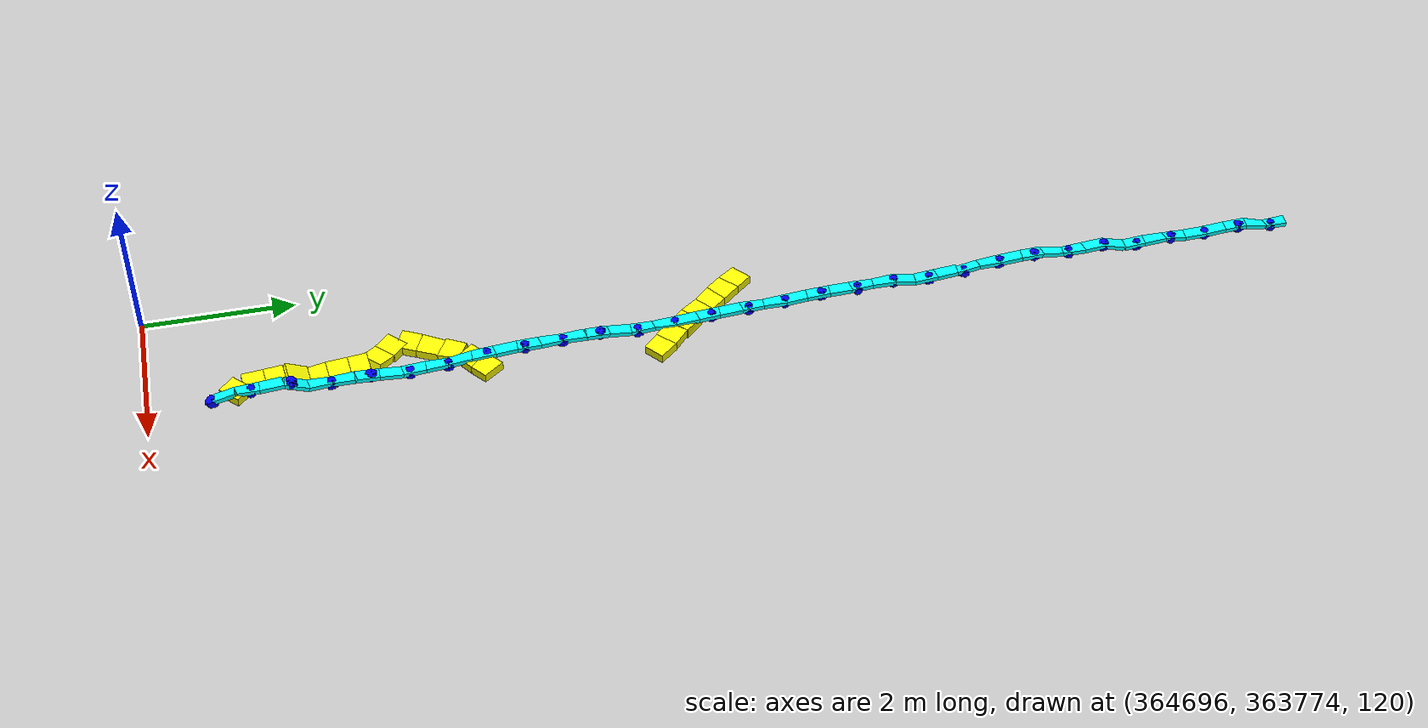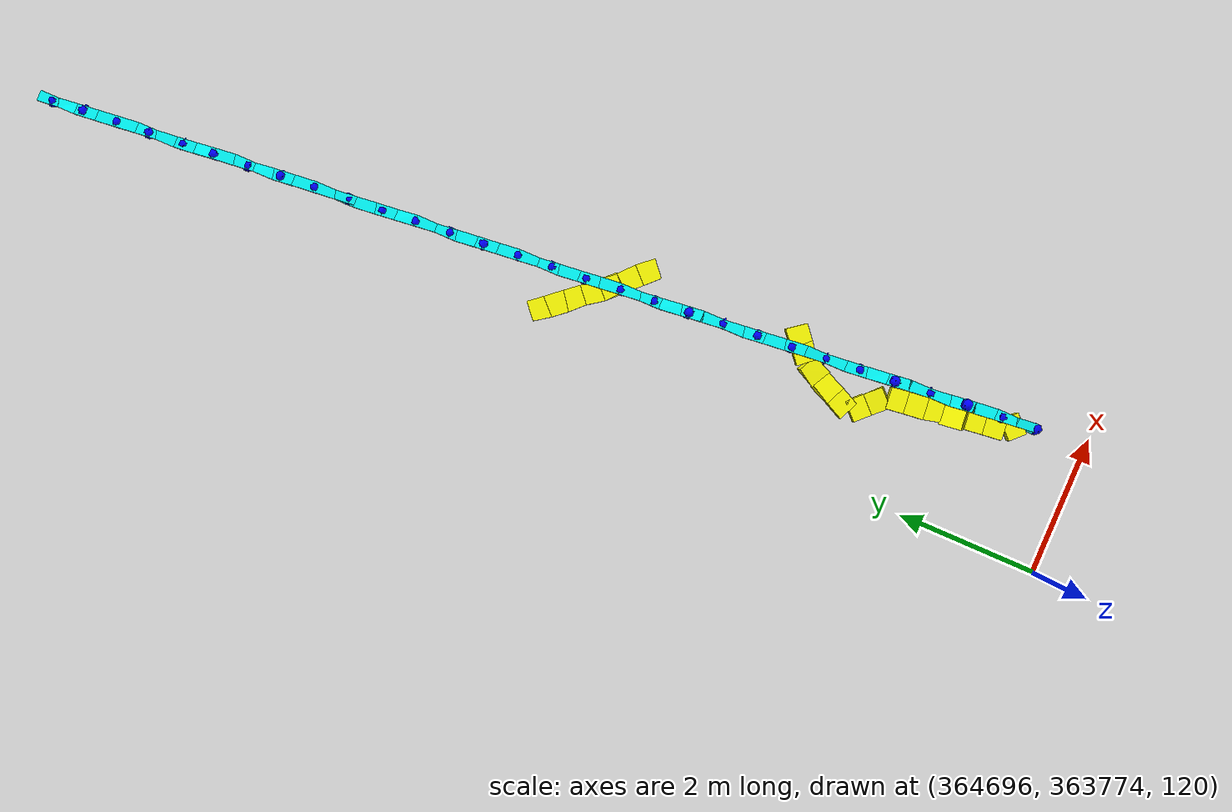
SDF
<sdf version="1.5">
 <world name="default">
  <include><uri>model://sun</uri></include>
  <model name="road_segment_1">
   <static>true</static>
   <pose>364697.74 363775.14 120.30999999991997 0 -5.659366866794168e-10 2.356194490192345</pose>
   <link name="link">
    <collision name="collision">
     <geometry><box><size>0.2828427124087646 0.3 0.12</size></box></geometry>
     <surface><friction><ode><mu>0.1</mu><mu2>0.1</mu2></ode></friction></surface>
    </collision>
    <visual name="visual">
     <geometry><box><size>0.2828427124087646 0.3 0.12</size></box></geometry>
     <material><ambient>1 1 0 1</ambient><diffuse>1 1 0 1</diffuse><emissive>1 1 0 1</emissive></material>
    </visual>
   </link>
  </model>
  <model name="road_segment_2">
   <static>true</static>
   <pose>364697.62333333335 363775.3733333333 120.30999999999999 0 5.2879187787523526e-14 1.695151321314793</pose>
   <link name="link">
    <collision name="collision">
     <geometry><box><size>0.2687419249384718 0.3 0.12</size></box></geometry>
     <surface><friction><ode><mu>0.02</mu><mu2>0.02</mu2></ode></friction></surface>
    </collision>
    <visual name="visual">
     <geometry><box><size>0.2687419249384718 0.3 0.12</size></box></geometry>
     <material><ambient>1 1 0 1</ambient><diffuse>1 1 0 1</diffuse><emissive>1 1 0 1</emissive></material>
    </visual>
   </link>
  </model>
  <model name="road_segment_3">
   <static>true</static>
   <pose>364697.59 363775.64 120.30999999999999 0 -5.2879187787523526e-14 1.695151321314793</pose>
   <link name="link">
    <collision name="collision">
     <geometry><box><size>0.2687419249384718 0.3 0.12</size></box></geometry>
     <surface><friction><ode><mu>0.02</mu><mu2>0.02</mu2></ode></friction></surface>
    </collision>
    <visual name="visual">
     <geometry><box><size>0.2687419249384718 0.3 0.12</size></box></geometry>
     <material><ambient>1 1 0 1</ambient><diffuse>1 1 0 1</diffuse><emissive>1 1 0 1</emissive></material>
    </visual>
   </link>
  </model>
  <model name="road_segment_4">
   <static>true</static>
   <pose>364697.5566666667 363775.9066666667 120.23500000026193 0 0.5090836740391417 1.695151321287928</pose>
   <link name="link">
    <collision name="collision">
     <geometry><box><size>0.3077697550012352 0.3 0.12</size></box></geometry>
     <surface><friction><ode><mu>0.02</mu><mu2>0.02</mu2></ode></friction></surface>
    </collision>
    <visual name="visual">
     <geometry><box><size>0.3077697550012352 0.3 0.12</size></box></geometry>
     <material><ambient>1 1 0 1</ambient><diffuse>1 1 0 1</diffuse><emissive>1 1 0 1</emissive></material>
    </visual>
   </link>
  </model>
  <model name="road_segment_5">
   <static>true</static>
   <pose>364697.5233333333 363776.17333333334 120.16000000026192 0 1.9493912577346843e-09 1.6951513215297136</pose>
   <link name="link">
    <collision name="collision">
     <geometry><box><size>0.2687419249456916 0.3 0.12</size></box></geometry>
     <surface><friction><ode><mu>0.02</mu><mu2>0.02</mu2></ode></friction></surface>
    </collision>
    <visual name="visual">
     <geometry><box><size>0.2687419249456916 0.3 0.12</size></box></geometry>
     <material><ambient>1 1 0 1</ambient><diffuse>1 1 0 1</diffuse><emissive>1 1 0 1</emissive></material>
    </visual>
   </link>
  </model>
  <model name="road_segment_6">
   <static>true</static>
   <pose>364697.49 363776.44000000006 120.15999999999998 0 -0.0 1.695151321314793</pose>
   <link name="link">
    <collision name="collision">
     <geometry><box><size>0.2687419249384718 0.3 0.12</size></box></geometry>
     <surface><friction><ode><mu>0.02</mu><mu2>0.02</mu2></ode></friction></surface>
    </collision>
    <visual name="visual">
     <geometry><box><size>0.2687419249384718 0.3 0.12</size></box></geometry>
     <material><ambient>1 1 0 1</ambient><diffuse>1 1 0 1</diffuse><emissive>1 1 0 1</emissive></material>
    </visual>
   </link>
  </model>
  <model name="road_segment_7">
   <static>true</static>
   <pose>364697.45666666667 363776.70666666667 120.1600000000873 0 -6.498323387208766e-10 1.695151321314793</pose>
   <link name="link">
    <collision name="collision">
     <geometry><box><size>0.2687419249384718 0.3 0.12</size></box></geometry>
     <surface><friction><ode><mu>0.02</mu><mu2>0.02</mu2></ode></friction></surface>
    </collision>
    <visual name="visual">
     <geometry><box><size>0.2687419249384718 0.3 0.12</size></box></geometry>
     <material><ambient>1 1 0 1</ambient><diffuse>1 1 0 1</diffuse><emissive>1 1 0 1</emissive></material>
    </visual>
   </link>
  </model>
  <model name="road_segment_8">
   <static>true</static>
   <pose>364697.33999999997 363776.94000000006 120.1300000002954 0 0.2090332982054584 2.356194490192345</pose>
   <link name="link">
    <collision name="collision">
     <geometry><box><size>0.28913664586199855 0.3 0.12</size></box></geometry>
     <surface><friction><ode><mu>0.1</mu><mu2>0.1</mu2></ode></friction></surface>
    </collision>
    <visual name="visual">
     <geometry><box><size>0.28913664586199855 0.3 0.12</size></box></geometry>
     <material><ambient>1 1 0 1</ambient><diffuse>1 1 0 1</diffuse><emissive>1 1 0 1</emissive></material>
    </visual>
   </link>
  </model>
  <model name="road_segment_9">
   <static>true</static>
   <pose>364697.14 363777.14 120.10000000020808 0 1.4714152879688886e-09 2.356194490337864</pose>
   <link name="link">
    <collision name="collision">
     <geometry><box><size>0.2828427124499236 0.3 0.12</size></box></geometry>
     <surface><friction><ode><mu>0.1</mu><mu2>0.1</mu2></ode></friction></surface>
    </collision>
    <visual name="visual">
     <geometry><box><size>0.2828427124499236 0.3 0.12</size></box></geometry>
     <material><ambient>1 1 0 1</ambient><diffuse>1 1 0 1</diffuse><emissive>1 1 0 1</emissive></material>
    </visual>
   </link>
  </model>
  <model name="road_segment_10">
   <static>true</static>
   <pose>364697.1066666667 363777.3733333333 120.10000000000001 0 -4.766465574096042e-14 1.107148717706779</pose>
   <link name="link">
    <collision name="collision">
     <geometry><box><size>0.29814239700864903 0.3 0.12</size></box></geometry>
     <surface><friction><ode><mu>0.02</mu><mu2>0.02</mu2></ode></friction></surface>
    </collision>
    <visual name="visual">
     <geometry><box><size>0.29814239700864903 0.3 0.12</size></box></geometry>
     <material><ambient>1 1 0 1</ambient><diffuse>1 1 0 1</diffuse><emissive>1 1 0 1</emissive></material>
    </visual>
   </link>
  </model>
  <model name="road_segment_11">
   <static>true</static>
   <pose>364697.24 363777.64 120.09500000005384 0 0.03352844990459563 1.107148717881402</pose>
   <link name="link">
    <collision name="collision">
     <geometry><box><size>0.29831005493678464 0.3 0.12</size></box></geometry>
     <surface><friction><ode><mu>0.02</mu><mu2>0.02</mu2></ode></friction></surface>
    </collision>
    <visual name="visual">
     <geometry><box><size>0.29831005493678464 0.3 0.12</size></box></geometry>
     <material><ambient>1 1 0 1</ambient><diffuse>1 1 0 1</diffuse><emissive>1 1 0 1</emissive></material>
    </visual>
   </link>
  </model>
  <model name="road_segment_12">
   <static>true</static>
   <pose>364697.3733333333 363777.9066666666 120.09999999987922 0 -0.06698168555039336 1.107148717706779</pose>
   <link name="link">
    <collision name="collision">
     <geometry><box><size>0.2988124643916078 0.3 0.12</size></box></geometry>
     <surface><friction><ode><mu>0.02</mu><mu2>0.02</mu2></ode></friction></surface>
    </collision>
    <visual name="visual">
     <geometry><box><size>0.2988124643916078 0.3 0.12</size></box></geometry>
     <material><ambient>1 1 0 1</ambient><diffuse>1 1 0 1</diffuse><emissive>1 1 0 1</emissive></material>
    </visual>
   </link>
  </model>
  <model name="road_segment_13">
   <static>true</static>
   <pose>364697.54000000004 363778.1233333333 120.10999999982538 0 -1.3414909123693356e-09 0.6947382762253299</pose>
   <link name="link">
    <collision name="collision">
     <geometry><box><size>0.26034165588491964 0.3 0.12</size></box></geometry>
     <surface><friction><ode><mu>0.02</mu><mu2>0.02</mu2></ode></friction></surface>
    </collision>
    <visual name="visual">
     <geometry><box><size>0.26034165588491964 0.3 0.12</size></box></geometry>
     <material><ambient>1 1 0 1</ambient><diffuse>1 1 0 1</diffuse><emissive>1 1 0 1</emissive></material>
    </visual>
   </link>
  </model>
  <model name="road_segment_14">
   <static>true</static>
   <pose>364697.74 363778.29 120.11 0 -0.0 0.6947382760535696</pose>
   <link name="link">
    <collision name="collision">
     <geometry><box><size>0.260341655847656 0.3 0.12</size></box></geometry>
     <surface><friction><ode><mu>0.02</mu><mu2>0.02</mu2></ode></friction></surface>
    </collision>
    <visual name="visual">
     <geometry><box><size>0.260341655847656 0.3 0.12</size></box></geometry>
     <material><ambient>1 1 0 1</ambient><diffuse>1 1 0 1</diffuse><emissive>1 1 0 1</emissive></material>
    </visual>
   </link>
  </model>
  <model name="road_segment_25">
   <static>true</static>
   <pose>364697.74 363780.54000000004 120.0 0 -0.0 2.3561944900468257</pose>
   <link name="link">
    <collision name="collision">
     <geometry><box><size>0.2828427124499236 0.3 0.12</size></box></geometry>
     <surface><friction><ode><mu>0.02</mu><mu2>0.02</mu2></ode></friction></surface>
    </collision>
    <visual name="visual">
     <geometry><box><size>0.2828427124499236 0.3 0.12</size></box></geometry>
     <material><ambient>1 1 0 1</ambient><diffuse>1 1 0 1</diffuse><emissive>1 1 0 1</emissive></material>
    </visual>
   </link>
  </model>
  <model name="road_segment_26">
   <static>true</static>
   <pose>364697.54000000004 363780.74 119.99999999996508 0 2.469441419233452e-10 2.356194490337864</pose>
   <link name="link">
    <collision name="collision">
     <geometry><box><size>0.2828427124499236 0.3 0.12</size></box></geometry>
     <surface><friction><ode><mu>0.02</mu><mu2>0.02</mu2></ode></friction></surface>
    </collision>
    <visual name="visual">
     <geometry><box><size>0.2828427124499236 0.3 0.12</size></box></geometry>
     <material><ambient>1 1 0 1</ambient><diffuse>1 1 0 1</diffuse><emissive>1 1 0 1</emissive></material>
    </visual>
   </link>
  </model>
  <model name="road_segment_27">
   <static>true</static>
   <pose>364697.33999999997 363780.93999999994 119.98999999996508 0 0.07059317903422238 2.356194490192345</pose>
   <link name="link">
    <collision name="collision">
     <geometry><box><size>0.2835489375866522 0.3 0.12</size></box></geometry>
     <surface><friction><ode><mu>0.02</mu><mu2>0.02</mu2></ode></friction></surface>
    </collision>
    <visual name="visual">
     <geometry><box><size>0.2835489375866522 0.3 0.12</size></box></geometry>
     <material><ambient>1 1 0 1</ambient><diffuse>1 1 0 1</diffuse><emissive>1 1 0 1</emissive></material>
    </visual>
   </link>
  </model>
  <model name="road_segment_28">
   <static>true</static>
   <pose>364697.1566666666 363781.14 119.98 0 -0.0 2.2655346030202264</pose>
   <link name="link">
    <collision name="collision">
     <geometry><box><size>0.26034165588491964 0.3 0.12</size></box></geometry>
     <surface><friction><ode><mu>0.02</mu><mu2>0.02</mu2></ode></friction></surface>
    </collision>
    <visual name="visual">
     <geometry><box><size>0.26034165588491964 0.3 0.12</size></box></geometry>
     <material><ambient>1 1 0 1</ambient><diffuse>1 1 0 1</diffuse><emissive>1 1 0 1</emissive></material>
    </visual>
   </link>
  </model>
  <model name="road_segment_29">
   <static>true</static>
   <pose>364696.99 363781.33999999997 119.98 0 -0.0 2.2655346028484664</pose>
   <link name="link">
    <collision name="collision">
     <geometry><box><size>0.260341655847656 0.3 0.12</size></box></geometry>
     <surface><friction><ode><mu>0.02</mu><mu2>0.02</mu2></ode></friction></surface>
    </collision>
    <visual name="visual">
     <geometry><box><size>0.260341655847656 0.3 0.12</size></box></geometry>
     <material><ambient>1 1 0 1</ambient><diffuse>1 1 0 1</diffuse><emissive>1 1 0 1</emissive></material>
    </visual>
   </link>
  </model>
  <model name="road_segment_30">
   <static>true</static>
   <pose>364696.82333333336 363781.54000000004 119.98 0 -0.0 2.2655346030202264</pose>
   <link name="link">
    <collision name="collision">
     <geometry><box><size>0.26034165588491964 0.3 0.12</size></box></geometry>
     <surface><friction><ode><mu>0.02</mu><mu2>0.02</mu2></ode></friction></surface>
    </collision>
    <visual name="visual">
     <geometry><box><size>0.26034165588491964 0.3 0.12</size></box></geometry>
     <material><ambient>1 1 0 1</ambient><diffuse>1 1 0 1</diffuse><emissive>1 1 0 1</emissive></material>
    </visual>
   </link>
  </model>
  <model name="road_segment_31">
   <static>true</static>
   <pose>364696.6566666666 363781.74 119.98 0 -0.0 2.2655346031633603</pose>
   <link name="link">
    <collision name="collision">
     <geometry><box><size>0.26034165584020325 0.3 0.12</size></box></geometry>
     <surface><friction><ode><mu>0.2</mu><mu2>0.2</mu2></ode></friction></surface>
    </collision>
    <visual name="visual">
     <geometry><box><size>0.26034165584020325 0.3 0.12</size></box></geometry>
     <material><ambient>1 1 0 1</ambient><diffuse>1 1 0 1</diffuse><emissive>1 1 0 1</emissive></material>
    </visual>
   </link>
  </model>
  <model name="normal_astar_segment_1">
   <static>true</static>
   <pose>364697.8276923077 363774.9892307692 120.355 0 -0.16543300727344387 1.6530843166494582</pose>
   <link name="link">
    <visual name="visual">
     <geometry><box><size>0.3036201691158143 0.15 0.06</size></box></geometry>
     <material><ambient>0 1 1 1</ambient><diffuse>0 1 1 1</diffuse><emissive>0 1 1 1</emissive></material>
    </visual>
   </link>
  </model>
  <model name="normal_astar_segment_2">
   <static>true</static>
   <pose>364697.8030769231 363775.2876923077 120.38000000000001 0 -4.7452575824000007e-14 1.65308431645575</pose>
   <link name="link">
    <visual name="visual">
     <geometry><box><size>0.2994748855764876 0.15 0.06</size></box></geometry>
     <material><ambient>0 1 1 1</ambient><diffuse>0 1 1 1</diffuse><emissive>0 1 1 1</emissive></material>
    </visual>
   </link>
  </model>
  <model name="normal_astar_segment_3">
   <static>true</static>
   <pose>364697.7784615385 363775.5861538462 120.38 0 9.490515162809992e-14 1.653084316633482</pose>
   <link name="link">
    <visual name="visual">
     <geometry><box><size>0.2994748856392827 0.15 0.06</size></box></geometry>
     <material><ambient>0 1 1 1</ambient><diffuse>0 1 1 1</diffuse><emissive>0 1 1 1</emissive></material>
    </visual>
   </link>
  </model>
  <model name="normal_astar_segment_4">
   <static>true</static>
   <pose>364697.75384615385 363775.8846153846 120.30730769257163 0 0.4519522485566612 1.65308431645575</pose>
   <link name="link">
    <visual name="visual">
     <geometry><box><size>0.33289922398239996 0.15 0.06</size></box></geometry>
     <material><ambient>0 1 1 1</ambient><diffuse>0 1 1 1</diffuse><emissive>0 1 1 1</emissive></material>
    </visual>
   </link>
  </model>
  <model name="normal_astar_segment_5">
   <static>true</static>
   <pose>364697.72923076927 363776.18307692313 120.23230769257164 0 0.015410373311420015 1.6530843166494582</pose>
   <link name="link">
    <visual name="visual">
     <geometry><box><size>0.2995104486890844 0.15 0.06</size></box></geometry>
     <material><ambient>0 1 1 1</ambient><diffuse>0 1 1 1</diffuse><emissive>0 1 1 1</emissive></material>
    </visual>
   </link>
  </model>
  <model name="normal_astar_segment_6">
   <static>true</static>
   <pose>364697.70461538463 363776.4815384615 120.23 0 4.7452575823241905e-14 1.6530843166494582</pose>
   <link name="link">
    <visual name="visual">
     <geometry><box><size>0.299474885581272 0.15 0.06</size></box></geometry>
     <material><ambient>0 1 1 1</ambient><diffuse>0 1 1 1</diffuse><emissive>0 1 1 1</emissive></material>
    </visual>
   </link>
  </model>
  <model name="normal_astar_segment_7">
   <static>true</static>
   <pose>364697.68000000005 363776.78 120.20992307708889 0 0.13328591527104808 1.6530843164397742</pose>
   <link name="link">
    <visual name="visual">
     <geometry><box><size>0.3021548253132972 0.15 0.06</size></box></geometry>
     <material><ambient>0 1 1 1</ambient><diffuse>0 1 1 1</diffuse><emissive>0 1 1 1</emissive></material>
    </visual>
   </link>
  </model>
  <model name="normal_astar_segment_8">
   <static>true</static>
   <pose>364697.6553846154 363777.07846153853 120.16492307708889 0 0.16493317869527643 1.6530843166494582</pose>
   <link name="link">
    <visual name="visual">
     <geometry><box><size>0.30359487179501726 0.15 0.06</size></box></geometry>
     <material><ambient>0 1 1 1</ambient><diffuse>0 1 1 1</diffuse><emissive>0 1 1 1</emissive></material>
    </visual>
   </link>
  </model>
  <model name="normal_astar_segment_9">
   <static>true</static>
   <pose>364697.6307692308 363777.3769230769 120.13999999999999 0 -0.0 1.6530843166494582</pose>
   <link name="link">
    <visual name="visual">
     <geometry><box><size>0.299474885581272 0.15 0.06</size></box></geometry>
     <material><ambient>0 1 1 1</ambient><diffuse>0 1 1 1</diffuse><emissive>0 1 1 1</emissive></material>
    </visual>
   </link>
  </model>
  <model name="normal_astar_segment_10">
   <static>true</static>
   <pose>364697.60615384614 363777.67538461543 120.14 0 -4.7452575824000007e-14 1.65308431645575</pose>
   <link name="link">
    <visual name="visual">
     <geometry><box><size>0.2994748855764876 0.15 0.06</size></box></geometry>
     <material><ambient>0 1 1 1</ambient><diffuse>0 1 1 1</diffuse><emissive>0 1 1 1</emissive></material>
    </visual>
   </link>
  </model>
  <model name="normal_astar_segment_11">
   <static>true</static>
   <pose>364697.58153846156 363777.9738461538 120.16 0 -0.132781234943277 1.6530843166494582</pose>
   <link name="link">
    <visual name="visual">
     <geometry><box><size>0.30213441891634146 0.15 0.06</size></box></geometry>
     <material><ambient>0 1 1 1</ambient><diffuse>0 1 1 1</diffuse><emissive>0 1 1 1</emissive></material>
    </visual>
   </link>
  </model>
  <model name="normal_astar_segment_12">
   <static>true</static>
   <pose>364697.556923077 363778.2723076923 120.17999999999999 0 -0.0 1.6530843164397742</pose>
   <link name="link">
    <visual name="visual">
     <geometry><box><size>0.2994748856344983 0.15 0.06</size></box></geometry>
     <material><ambient>0 1 1 1</ambient><diffuse>0 1 1 1</diffuse><emissive>0 1 1 1</emissive></material>
    </visual>
   </link>
  </model>
  <model name="normal_astar_segment_13">
   <static>true</static>
   <pose>364697.53230769234 363778.57076923084 120.17999999999999 0 -0.0 1.6530843166494582</pose>
   <link name="link">
    <visual name="visual">
     <geometry><box><size>0.299474885581272 0.15 0.06</size></box></geometry>
     <material><ambient>0 1 1 1</ambient><diffuse>0 1 1 1</diffuse><emissive>0 1 1 1</emissive></material>
    </visual>
   </link>
  </model>
  <model name="normal_astar_segment_14">
   <static>true</static>
   <pose>364697.5076923077 363778.8692307692 120.1710769231215 0 0.059521097593675916 1.6530843166494582</pose>
   <link name="link">
    <visual name="visual">
     <geometry><box><size>0.30000615376660716 0.15 0.06</size></box></geometry>
     <material><ambient>0 1 1 1</ambient><diffuse>0 1 1 1</diffuse><emissive>0 1 1 1</emissive></material>
    </visual>
   </link>
  </model>
  <model name="normal_astar_segment_15">
   <static>true</static>
   <pose>364697.48307692306 363779.16769230773 120.16107692312151 0 0.007191952351695317 1.65308431645575</pose>
   <link name="link">
    <visual name="visual">
     <geometry><box><size>0.2994826307896486 0.15 0.06</size></box></geometry>
     <material><ambient>0 1 1 1</ambient><diffuse>0 1 1 1</diffuse><emissive>0 1 1 1</emissive></material>
    </visual>
   </link>
  </model>
  <model name="normal_astar_segment_16">
   <static>true</static>
   <pose>364697.4584615385 363779.4661538461 120.16 0 -0.0 1.6530843166494582</pose>
   <link name="link">
    <visual name="visual">
     <geometry><box><size>0.299474885581272 0.15 0.06</size></box></geometry>
     <material><ambient>0 1 1 1</ambient><diffuse>0 1 1 1</diffuse><emissive>0 1 1 1</emissive></material>
    </visual>
   </link>
  </model>
  <model name="normal_astar_segment_17">
   <static>true</static>
   <pose>364697.4338461539 363779.7646153846 120.142170414364 0 0.11851432097828819 1.6530843164397742</pose>
   <link name="link">
    <visual name="visual">
     <geometry><box><size>0.3015904236238276 0.15 0.06</size></box></geometry>
     <material><ambient>0 1 1 1</ambient><diffuse>0 1 1 1</diffuse><emissive>0 1 1 1</emissive></material>
    </visual>
   </link>
  </model>
  <model name="normal_astar_segment_18">
   <static>true</static>
   <pose>364697.40923076926 363780.06307692314 120.09501656817626 0 0.1933903189620883 1.6530843166494582</pose>
   <link name="link">
    <visual name="visual">
     <geometry><box><size>0.30516365465360457 0.15 0.06</size></box></geometry>
     <material><ambient>0 1 1 1</ambient><diffuse>0 1 1 1</diffuse><emissive>0 1 1 1</emissive></material>
    </visual>
   </link>
  </model>
  <model name="normal_astar_segment_19">
   <static>true</static>
   <pose>364697.3846153846 363780.3615384615 120.06446153839268 0 0.008219330402139867 1.6530843166494582</pose>
   <link name="link">
    <visual name="visual">
     <geometry><box><size>0.29948500173718917 0.15 0.06</size></box></geometry>
     <material><ambient>0 1 1 1</ambient><diffuse>0 1 1 1</diffuse><emissive>0 1 1 1</emissive></material>
    </visual>
   </link>
  </model>
  <model name="normal_astar_segment_20">
   <static>true</static>
   <pose>364697.36 363780.66000000003 120.0619999999319 0 0.008219330382816931 1.65308431645575</pose>
   <link name="link">
    <visual name="visual">
     <geometry><box><size>0.29948500173235704 0.15 0.06</size></box></geometry>
     <material><ambient>0 1 1 1</ambient><diffuse>0 1 1 1</diffuse><emissive>0 1 1 1</emissive></material>
    </visual>
   </link>
  </model>
  <model name="normal_astar_segment_21">
   <static>true</static>
   <pose>364697.3353846154 363780.9584615385 120.06161538453092 0 -0.005650856629490657 1.653084316633482</pose>
   <link name="link">
    <visual name="visual">
     <geometry><box><size>0.29947966714597474 0.15 0.06</size></box></geometry>
     <material><ambient>0 1 1 1</ambient><diffuse>0 1 1 1</diffuse><emissive>0 1 1 1</emissive></material>
    </visual>
   </link>
  </model>
  <model name="normal_astar_segment_22">
   <static>true</static>
   <pose>364697.31076923077 363781.25692307693 120.06061538451114 0 0.012328648577580287 1.6530843166494582</pose>
   <link name="link">
    <visual name="visual">
     <geometry><box><size>0.29949764645157784 0.15 0.06</size></box></geometry>
     <material><ambient>0 1 1 1</ambient><diffuse>0 1 1 1</diffuse><emissive>0 1 1 1</emissive></material>
    </visual>
   </link>
  </model>
  <model name="normal_astar_segment_23">
   <static>true</static>
   <pose>364697.2861538462 363781.55538461544 120.05692307681998 0 0.012328648548740665 1.65308431645575</pose>
   <link name="link">
    <visual name="visual">
     <geometry><box><size>0.2994976464466866 0.15 0.06</size></box></geometry>
     <material><ambient>0 1 1 1</ambient><diffuse>0 1 1 1</diffuse><emissive>0 1 1 1</emissive></material>
    </visual>
   </link>
  </model>
  <model name="normal_astar_segment_24">
   <static>true</static>
   <pose>364697.26153846155 363781.8538461538 120.05266627213335 0 0.016097794669693112 1.6530843166494582</pose>
   <link name="link">
    <visual name="visual">
     <geometry><box><size>0.299513692581604 0.15 0.06</size></box></geometry>
     <material><ambient>0 1 1 1</ambient><diffuse>0 1 1 1</diffuse><emissive>0 1 1 1</emissive></material>
    </visual>
   </link>
  </model>
  <model name="normal_astar_segment_25">
   <static>true</static>
   <pose>364697.2369230769 363782.15230769233 120.05012781064507 0 0.0008535648241926272 1.65308431645575</pose>
   <link name="link">
    <visual name="visual">
     <geometry><box><size>0.299474994671165 0.15 0.06</size></box></geometry>
     <material><ambient>0 1 1 1</ambient><diffuse>0 1 1 1</diffuse><emissive>0 1 1 1</emissive></material>
    </visual>
   </link>
  </model>
  <model name="normal_astar_segment_26">
   <static>true</static>
   <pose>364697.21230769233 363782.4507692308 120.05 0 -0.0 1.653084316633482</pose>
   <link name="link">
    <visual name="visual">
     <geometry><box><size>0.2994748856392827 0.15 0.06</size></box></geometry>
     <material><ambient>0 1 1 1</ambient><diffuse>0 1 1 1</diffuse><emissive>0 1 1 1</emissive></material>
    </visual>
   </link>
  </model>
  <model name="normal_astar_segment_27">
   <static>true</static>
   <pose>364697.1876923077 363782.74923076923 120.04561538469886 0 0.02927365852378409 1.6530843166494582</pose>
   <link name="link">
    <visual name="visual">
     <geometry><box><size>0.29960324847917075 0.15 0.06</size></box></geometry>
     <material><ambient>0 1 1 1</ambient><diffuse>0 1 1 1</diffuse><emissive>0 1 1 1</emissive></material>
    </visual>
   </link>
  </model>
  <model name="normal_astar_segment_28">
   <static>true</static>
   <pose>364697.1630769231 363783.04769230774 120.03061538469886 0 0.07077491183184842 1.65308431645575</pose>
   <link name="link">
    <visual name="visual">
     <geometry><box><size>0.30022650226165914 0.15 0.06</size></box></geometry>
     <material><ambient>0 1 1 1</ambient><diffuse>0 1 1 1</diffuse><emissive>0 1 1 1</emissive></material>
    </visual>
   </link>
  </model>
  <model name="normal_astar_segment_29">
   <static>true</static>
   <pose>364697.1384615385 363783.3461538461 120.02 0 -0.0 1.6530843166494582</pose>
   <link name="link">
    <visual name="visual">
     <geometry><box><size>0.299474885581272 0.15 0.06</size></box></geometry>
     <material><ambient>0 1 1 1</ambient><diffuse>0 1 1 1</diffuse><emissive>0 1 1 1</emissive></material>
    </visual>
   </link>
  </model>
  <model name="normal_astar_segment_30">
   <static>true</static>
   <pose>364697.11384615384 363783.64461538463 120.02 0 -0.0 1.65308431645575</pose>
   <link name="link">
    <visual name="visual">
     <geometry><box><size>0.2994748855764876 0.15 0.06</size></box></geometry>
     <material><ambient>0 1 1 1</ambient><diffuse>0 1 1 1</diffuse><emissive>0 1 1 1</emissive></material>
    </visual>
   </link>
  </model>
  <model name="normal_astar_segment_31">
   <static>true</static>
   <pose>364697.08923076926 363783.9430769231 119.97999999999999 0 0.2610388845771041 1.653084316633482</pose>
   <link name="link">
    <visual name="visual">
     <geometry><box><size>0.30997613961184733 0.15 0.06</size></box></geometry>
     <material><ambient>0 1 1 1</ambient><diffuse>0 1 1 1</diffuse><emissive>0 1 1 1</emissive></material>
    </visual>
   </link>
  </model>
  <model name="normal_astar_segment_32">
   <static>true</static>
   <pose>364697.0646153846 363784.24153846153 119.93999999999998 0 -4.7452575823241905e-14 1.6530843166494582</pose>
   <link name="link">
    <visual name="visual">
     <geometry><box><size>0.299474885581272 0.15 0.06</size></box></geometry>
     <material><ambient>0 1 1 1</ambient><diffuse>0 1 1 1</diffuse><emissive>0 1 1 1</emissive></material>
    </visual>
   </link>
  </model>
  <model name="normal_astar_segment_33">
   <static>true</static>
   <pose>364697.04000000004 363784.54000000004 119.93999999999998 0 4.7452575824000007e-14 1.65308431645575</pose>
   <link name="link">
    <visual name="visual">
     <geometry><box><size>0.2994748855764876 0.15 0.06</size></box></geometry>
     <material><ambient>0 1 1 1</ambient><diffuse>0 1 1 1</diffuse><emissive>0 1 1 1</emissive></material>
    </visual>
   </link>
  </model>
  <model name="normal_astar_segment_34">
   <static>true</static>
   <pose>364697.0153846154 363784.8384615384 119.95476923064241 0 -0.09831617840061792 1.6530843166494582</pose>
   <link name="link">
    <visual name="visual">
     <geometry><box><size>0.3009281106659745 0.15 0.06</size></box></geometry>
     <material><ambient>0 1 1 1</ambient><diffuse>0 1 1 1</diffuse><emissive>0 1 1 1</emissive></material>
    </visual>
   </link>
  </model>
  <model name="normal_astar_segment_35">
   <static>true</static>
   <pose>364696.99076923076 363785.13692307693 119.97476923064242 0 -0.034918742399180344 1.653084316633482</pose>
   <link name="link">
    <visual name="visual">
     <geometry><box><size>0.2996575560885292 0.15 0.06</size></box></geometry>
     <material><ambient>0 1 1 1</ambient><diffuse>0 1 1 1</diffuse><emissive>0 1 1 1</emissive></material>
    </visual>
   </link>
  </model>
  <model name="normal_astar_segment_36">
   <static>true</static>
   <pose>364696.9661538461 363785.43538461544 119.97999999999998 0 4.7452575824000007e-14 1.65308431645575</pose>
   <link name="link">
    <visual name="visual">
     <geometry><box><size>0.2994748855764876 0.15 0.06</size></box></geometry>
     <material><ambient>0 1 1 1</ambient><diffuse>0 1 1 1</diffuse><emissive>0 1 1 1</emissive></material>
    </visual>
   </link>
  </model>
  <model name="normal_astar_segment_37">
   <static>true</static>
   <pose>364696.94153846154 363785.73384615383 119.97138461564484 0 0.057473241620274125 1.6530843166494582</pose>
   <link name="link">
    <visual name="visual">
     <geometry><box><size>0.2999701759913192 0.15 0.06</size></box></geometry>
     <material><ambient>0 1 1 1</ambient><diffuse>0 1 1 1</diffuse><emissive>0 1 1 1</emissive></material>
    </visual>
   </link>
  </model>
  <model name="normal_astar_segment_38">
   <static>true</static>
   <pose>364696.91692307696 363786.03230769234 119.93138461564484 0 0.20660680416836533 1.65308431645575</pose>
   <link name="link">
    <visual name="visual">
     <geometry><box><size>0.3059823254499368 0.15 0.06</size></box></geometry>
     <material><ambient>0 1 1 1</ambient><diffuse>0 1 1 1</diffuse><emissive>0 1 1 1</emissive></material>
    </visual>
   </link>
  </model>
  <model name="normal_astar_segment_39">
   <static>true</static>
   <pose>364696.8923076923 363786.3307692307 119.89999999999999 0 -0.0 1.6530843166494582</pose>
   <link name="link">
    <visual name="visual">
     <geometry><box><size>0.299474885581272 0.15 0.06</size></box></geometry>
     <material><ambient>0 1 1 1</ambient><diffuse>0 1 1 1</diffuse><emissive>0 1 1 1</emissive></material>
    </visual>
   </link>
  </model>
  <model name="normal_astar_segment_40">
   <static>true</static>
   <pose>364696.8676923077 363786.62923076923 119.89999999999999 0 -0.0 1.653084316633482</pose>
   <link name="link">
    <visual name="visual">
     <geometry><box><size>0.2994748856392827 0.15 0.06</size></box></geometry>
     <material><ambient>0 1 1 1</ambient><diffuse>0 1 1 1</diffuse><emissive>0 1 1 1</emissive></material>
    </visual>
   </link>
  </model>
  <model name="normal_astar_segment_41">
   <static>true</static>
   <pose>364696.84307692305 363786.92769230774 119.83999999999999 0 0.3811108689837032 1.65308431645575</pose>
   <link name="link">
    <visual name="visual">
     <geometry><box><size>0.3226223908705833 0.15 0.06</size></box></geometry>
     <material><ambient>0 1 1 1</ambient><diffuse>0 1 1 1</diffuse><emissive>0 1 1 1</emissive></material>
    </visual>
   </link>
  </model>
  <model name="normal_astar_segment_42">
   <static>true</static>
   <pose>364696.81846153847 363787.22615384613 119.77999999999999 0 -0.0 1.6530843166494582</pose>
   <link name="link">
    <visual name="visual">
     <geometry><box><size>0.299474885581272 0.15 0.06</size></box></geometry>
     <material><ambient>0 1 1 1</ambient><diffuse>0 1 1 1</diffuse><emissive>0 1 1 1</emissive></material>
    </visual>
   </link>
  </model>
  <model name="normal_astar_segment_43">
   <static>true</static>
   <pose>364696.7938461539 363787.52461538464 119.77999999999999 0 -0.0 1.65308431645575</pose>
   <link name="link">
    <visual name="visual">
     <geometry><box><size>0.2994748855764876 0.15 0.06</size></box></geometry>
     <material><ambient>0 1 1 1</ambient><diffuse>0 1 1 1</diffuse><emissive>0 1 1 1</emissive></material>
    </visual>
   </link>
  </model>
  <model name="normal_astar_segment_44">
   <static>true</static>
   <pose>364696.76923076925 363787.823076923 119.76346153864354 0 0.11000386646201046 1.6530843166494582</pose>
   <link name="link">
    <visual name="visual">
     <geometry><box><size>0.30129601708298553 0.15 0.06</size></box></geometry>
     <material><ambient>0 1 1 1</ambient><diffuse>0 1 1 1</diffuse><emissive>0 1 1 1</emissive></material>
    </visual>
   </link>
  </model>
  <model name="normal_astar_segment_45">
   <static>true</static>
   <pose>364696.7446153846 363788.12153846154 119.73846153864353 0 0.05644913520979374 1.653084316633482</pose>
   <link name="link">
    <visual name="visual">
     <geometry><box><size>0.2999526590539367 0.15 0.06</size></box></geometry>
     <material><ambient>0 1 1 1</ambient><diffuse>0 1 1 1</diffuse><emissive>0 1 1 1</emissive></material>
    </visual>
   </link>
  </model>
  <model name="normal_astar_segment_46">
   <static>true</static>
   <pose>364696.72 363788.42000000004 119.72999999999998 0 -4.7452575824000007e-14 1.65308431645575</pose>
   <link name="link">
    <visual name="visual">
     <geometry><box><size>0.2994748855764876 0.15 0.06</size></box></geometry>
     <material><ambient>0 1 1 1</ambient><diffuse>0 1 1 1</diffuse><emissive>0 1 1 1</emissive></material>
    </visual>
   </link>
  </model>
  <model name="normal_astar_segment_47">
   <static>true</static>
   <pose>364696.6953846154 363788.71846153843 119.72307692344923 0 0.04620186969601257 1.6530843166494582</pose>
   <link name="link">
    <visual name="visual">
     <geometry><box><size>0.299794801572054 0.15 0.06</size></box></geometry>
     <material><ambient>0 1 1 1</ambient><diffuse>0 1 1 1</diffuse><emissive>0 1 1 1</emissive></material>
    </visual>
   </link>
  </model>
  <model name="normal_astar_segment_48">
   <static>true</static>
   <pose>364696.67076923075 363789.01692307694 119.67307692344922 0 0.2801188843217719 1.6530843166494582</pose>
   <link name="link">
    <visual name="visual">
     <geometry><box><size>0.3116210718634425 0.15 0.06</size></box></geometry>
     <material><ambient>0 1 1 1</ambient><diffuse>0 1 1 1</diffuse><emissive>0 1 1 1</emissive></material>
    </visual>
   </link>
  </model>
  <model name="normal_astar_segment_49">
   <static>true</static>
   <pose>364696.6461538462 363789.3153846154 119.62999999999998 0 -4.745257581480806e-14 1.6530843164397742</pose>
   <link name="link">
    <visual name="visual">
     <geometry><box><size>0.2994748856344983 0.15 0.06</size></box></geometry>
     <material><ambient>0 1 1 1</ambient><diffuse>0 1 1 1</diffuse><emissive>0 1 1 1</emissive></material>
    </visual>
   </link>
  </model>
  <model name="dijkstra_marker_1">
   <static>true</static>
   <pose>364697.84 363774.84 120.30000000000001 0 0 0</pose>
   <link name="link">
    <visual name="visual">
     <geometry><sphere><radius>0.08</radius></sphere></geometry>
     <material><ambient>0 0 1 1</ambient><diffuse>0 0 1 1</diffuse><emissive>0 0 1 1</emissive></material>
    </visual>
   </link>
  </model>
  <model name="dijkstra_marker_2">
   <static>true</static>
   <pose>364697.798974359 363775.33743589744 120.35000000000001 0 0 0</pose>
   <link name="link">
    <visual name="visual">
     <geometry><sphere><radius>0.08</radius></sphere></geometry>
     <material><ambient>0 0 1 1</ambient><diffuse>0 0 1 1</diffuse><emissive>0 0 1 1</emissive></material>
    </visual>
   </link>
  </model>
  <model name="dijkstra_marker_3">
   <static>true</static>
   <pose>364697.757948718 363775.8348717949 120.35000000000001 0 0 0</pose>
   <link name="link">
    <visual name="visual">
     <geometry><sphere><radius>0.08</radius></sphere></geometry>
     <material><ambient>0 0 1 1</ambient><diffuse>0 0 1 1</diffuse><emissive>0 0 1 1</emissive></material>
    </visual>
   </link>
  </model>
  <model name="dijkstra_marker_4">
   <static>true</static>
   <pose>364697.71692307695 363776.3323076923 120.20000000000002 0 0 0</pose>
   <link name="link">
    <visual name="visual">
     <geometry><sphere><radius>0.08</radius></sphere></geometry>
     <material><ambient>0 0 1 1</ambient><diffuse>0 0 1 1</diffuse><emissive>0 0 1 1</emissive></material>
    </visual>
   </link>
  </model>
  <model name="dijkstra_marker_5">
   <static>true</static>
   <pose>364697.6758974359 363776.82974358974 120.20000000000002 0 0 0</pose>
   <link name="link">
    <visual name="visual">
     <geometry><sphere><radius>0.08</radius></sphere></geometry>
     <material><ambient>0 0 1 1</ambient><diffuse>0 0 1 1</diffuse><emissive>0 0 1 1</emissive></material>
    </visual>
   </link>
  </model>
  <model name="dijkstra_marker_6">
   <static>true</static>
   <pose>364697.6348717949 363777.3271794872 120.11 0 0 0</pose>
   <link name="link">
    <visual name="visual">
     <geometry><sphere><radius>0.08</radius></sphere></geometry>
     <material><ambient>0 0 1 1</ambient><diffuse>0 0 1 1</diffuse><emissive>0 0 1 1</emissive></material>
    </visual>
   </link>
  </model>
  <model name="dijkstra_marker_7">
   <static>true</static>
   <pose>364697.5938461539 363777.8246153846 120.11000000000001 0 0 0</pose>
   <link name="link">
    <visual name="visual">
     <geometry><sphere><radius>0.08</radius></sphere></geometry>
     <material><ambient>0 0 1 1</ambient><diffuse>0 0 1 1</diffuse><emissive>0 0 1 1</emissive></material>
    </visual>
   </link>
  </model>
  <model name="dijkstra_marker_8">
   <static>true</static>
   <pose>364697.55282051285 363778.3220512821 120.15 0 0 0</pose>
   <link name="link">
    <visual name="visual">
     <geometry><sphere><radius>0.08</radius></sphere></geometry>
     <material><ambient>0 0 1 1</ambient><diffuse>0 0 1 1</diffuse><emissive>0 0 1 1</emissive></material>
    </visual>
   </link>
  </model>
  <model name="dijkstra_marker_9">
   <static>true</static>
   <pose>364697.5117948718 363778.8194871795 120.15 0 0 0</pose>
   <link name="link">
    <visual name="visual">
     <geometry><sphere><radius>0.08</radius></sphere></geometry>
     <material><ambient>0 0 1 1</ambient><diffuse>0 0 1 1</diffuse><emissive>0 0 1 1</emissive></material>
    </visual>
   </link>
  </model>
  <model name="dijkstra_marker_10">
   <static>true</static>
   <pose>364697.4707692308 363779.3169230769 120.13000000000001 0 0 0</pose>
   <link name="link">
    <visual name="visual">
     <geometry><sphere><radius>0.08</radius></sphere></geometry>
     <material><ambient>0 0 1 1</ambient><diffuse>0 0 1 1</diffuse><emissive>0 0 1 1</emissive></material>
    </visual>
   </link>
  </model>
  <model name="dijkstra_marker_11">
   <static>true</static>
   <pose>364697.4297435898 363779.8143589744 120.12846153836125 0 0 0</pose>
   <link name="link">
    <visual name="visual">
     <geometry><sphere><radius>0.08</radius></sphere></geometry>
     <material><ambient>0 0 1 1</ambient><diffuse>0 0 1 1</diffuse><emissive>0 0 1 1</emissive></material>
    </visual>
   </link>
  </model>
  <model name="dijkstra_marker_12">
   <static>true</static>
   <pose>364697.38871794875 363780.3117948718 120.03487179480524 0 0 0</pose>
   <link name="link">
    <visual name="visual">
     <geometry><sphere><radius>0.08</radius></sphere></geometry>
     <material><ambient>0 0 1 1</ambient><diffuse>0 0 1 1</diffuse><emissive>0 0 1 1</emissive></material>
    </visual>
   </link>
  </model>
  <model name="dijkstra_marker_13">
   <static>true</static>
   <pose>364697.3476923077 363780.8092307692 120.03076923070297 0 0 0</pose>
   <link name="link">
    <visual name="visual">
     <geometry><sphere><radius>0.08</radius></sphere></geometry>
     <material><ambient>0 0 1 1</ambient><diffuse>0 0 1 1</diffuse><emissive>0 0 1 1</emissive></material>
    </visual>
   </link>
  </model>
  <model name="dijkstra_marker_14">
   <static>true</static>
   <pose>364697.3066666667 363781.3066666667 120.02999999990107 0 0 0</pose>
   <link name="link">
    <visual name="visual">
     <geometry><sphere><radius>0.08</radius></sphere></geometry>
     <material><ambient>0 0 1 1</ambient><diffuse>0 0 1 1</diffuse><emissive>0 0 1 1</emissive></material>
    </visual>
   </link>
  </model>
  <model name="dijkstra_marker_15">
   <static>true</static>
   <pose>364697.2656410257 363781.8041025641 120.02384615374766 0 0 0</pose>
   <link name="link">
    <visual name="visual">
     <geometry><sphere><radius>0.08</radius></sphere></geometry>
     <material><ambient>0 0 1 1</ambient><diffuse>0 0 1 1</diffuse><emissive>0 0 1 1</emissive></material>
    </visual>
   </link>
  </model>
  <model name="dijkstra_marker_16">
   <static>true</static>
   <pose>364697.22461538465 363782.3015384615 120.02000000000001 0 0 0</pose>
   <link name="link">
    <visual name="visual">
     <geometry><sphere><radius>0.08</radius></sphere></geometry>
     <material><ambient>0 0 1 1</ambient><diffuse>0 0 1 1</diffuse><emissive>0 0 1 1</emissive></material>
    </visual>
   </link>
  </model>
  <model name="dijkstra_marker_17">
   <static>true</static>
   <pose>364697.1835897436 363782.798974359 120.02000000000001 0 0 0</pose>
   <link name="link">
    <visual name="visual">
     <geometry><sphere><radius>0.08</radius></sphere></geometry>
     <material><ambient>0 0 1 1</ambient><diffuse>0 0 1 1</diffuse><emissive>0 0 1 1</emissive></material>
    </visual>
   </link>
  </model>
  <model name="dijkstra_marker_18">
   <static>true</static>
   <pose>364697.1425641026 363783.2964102564 119.99000000000001 0 0 0</pose>
   <link name="link">
    <visual name="visual">
     <geometry><sphere><radius>0.08</radius></sphere></geometry>
     <material><ambient>0 0 1 1</ambient><diffuse>0 0 1 1</diffuse><emissive>0 0 1 1</emissive></material>
    </visual>
   </link>
  </model>
  <model name="dijkstra_marker_19">
   <static>true</static>
   <pose>364697.1015384616 363783.7938461538 119.99000000000001 0 0 0</pose>
   <link name="link">
    <visual name="visual">
     <geometry><sphere><radius>0.08</radius></sphere></geometry>
     <material><ambient>0 0 1 1</ambient><diffuse>0 0 1 1</diffuse><emissive>0 0 1 1</emissive></material>
    </visual>
   </link>
  </model>
  <model name="dijkstra_marker_20">
   <static>true</static>
   <pose>364697.06051282055 363784.2912820513 119.91000000000001 0 0 0</pose>
   <link name="link">
    <visual name="visual">
     <geometry><sphere><radius>0.08</radius></sphere></geometry>
     <material><ambient>0 0 1 1</ambient><diffuse>0 0 1 1</diffuse><emissive>0 0 1 1</emissive></material>
    </visual>
   </link>
  </model>
  <model name="dijkstra_marker_21">
   <static>true</static>
   <pose>364697.01948717947 363784.7887179487 119.91000000000001 0 0 0</pose>
   <link name="link">
    <visual name="visual">
     <geometry><sphere><radius>0.08</radius></sphere></geometry>
     <material><ambient>0 0 1 1</ambient><diffuse>0 0 1 1</diffuse><emissive>0 0 1 1</emissive></material>
    </visual>
   </link>
  </model>
  <model name="dijkstra_marker_22">
   <static>true</static>
   <pose>364696.97846153844 363785.2861538462 119.95 0 0 0</pose>
   <link name="link">
    <visual name="visual">
     <geometry><sphere><radius>0.08</radius></sphere></geometry>
     <material><ambient>0 0 1 1</ambient><diffuse>0 0 1 1</diffuse><emissive>0 0 1 1</emissive></material>
    </visual>
   </link>
  </model>
  <model name="dijkstra_marker_23">
   <static>true</static>
   <pose>364696.9374358974 363785.7835897436 119.95 0 0 0</pose>
   <link name="link">
    <visual name="visual">
     <geometry><sphere><radius>0.08</radius></sphere></geometry>
     <material><ambient>0 0 1 1</ambient><diffuse>0 0 1 1</diffuse><emissive>0 0 1 1</emissive></material>
    </visual>
   </link>
  </model>
  <model name="dijkstra_marker_24">
   <static>true</static>
   <pose>364696.8964102564 363786.281025641 119.87 0 0 0</pose>
   <link name="link">
    <visual name="visual">
     <geometry><sphere><radius>0.08</radius></sphere></geometry>
     <material><ambient>0 0 1 1</ambient><diffuse>0 0 1 1</diffuse><emissive>0 0 1 1</emissive></material>
    </visual>
   </link>
  </model>
  <model name="dijkstra_marker_25">
   <static>true</static>
   <pose>364696.85538461537 363786.7784615385 119.87 0 0 0</pose>
   <link name="link">
    <visual name="visual">
     <geometry><sphere><radius>0.08</radius></sphere></geometry>
     <material><ambient>0 0 1 1</ambient><diffuse>0 0 1 1</diffuse><emissive>0 0 1 1</emissive></material>
    </visual>
   </link>
  </model>
  <model name="dijkstra_marker_26">
   <static>true</static>
   <pose>364696.81435897434 363787.2758974359 119.75 0 0 0</pose>
   <link name="link">
    <visual name="visual">
     <geometry><sphere><radius>0.08</radius></sphere></geometry>
     <material><ambient>0 0 1 1</ambient><diffuse>0 0 1 1</diffuse><emissive>0 0 1 1</emissive></material>
    </visual>
   </link>
  </model>
  <model name="dijkstra_marker_27">
   <static>true</static>
   <pose>364696.7733333333 363787.7733333333 119.75 0 0 0</pose>
   <link name="link">
    <visual name="visual">
     <geometry><sphere><radius>0.08</radius></sphere></geometry>
     <material><ambient>0 0 1 1</ambient><diffuse>0 0 1 1</diffuse><emissive>0 0 1 1</emissive></material>
    </visual>
   </link>
  </model>
  <model name="dijkstra_marker_28">
   <static>true</static>
   <pose>364696.7323076923 363788.2707692308 119.69999999999999 0 0 0</pose>
   <link name="link">
    <visual name="visual">
     <geometry><sphere><radius>0.08</radius></sphere></geometry>
     <material><ambient>0 0 1 1</ambient><diffuse>0 0 1 1</diffuse><emissive>0 0 1 1</emissive></material>
    </visual>
   </link>
  </model>
  <model name="dijkstra_marker_29">
   <static>true</static>
   <pose>364696.69128205127 363788.7682051282 119.70000000000002 0 0 0</pose>
   <link name="link">
    <visual name="visual">
     <geometry><sphere><radius>0.08</radius></sphere></geometry>
     <material><ambient>0 0 1 1</ambient><diffuse>0 0 1 1</diffuse><emissive>0 0 1 1</emissive></material>
    </visual>
   </link>
  </model>
  <model name="dijkstra_marker_30">
   <static>true</static>
   <pose>364696.65025641024 363789.2656410256 119.6 0 0 0</pose>
   <link name="link">
    <visual name="visual">
     <geometry><sphere><radius>0.08</radius></sphere></geometry>
     <material><ambient>0 0 1 1</ambient><diffuse>0 0 1 1</diffuse><emissive>0 0 1 1</emissive></material>
    </visual>
   </link>
  </model>
 </world>
</sdf>
